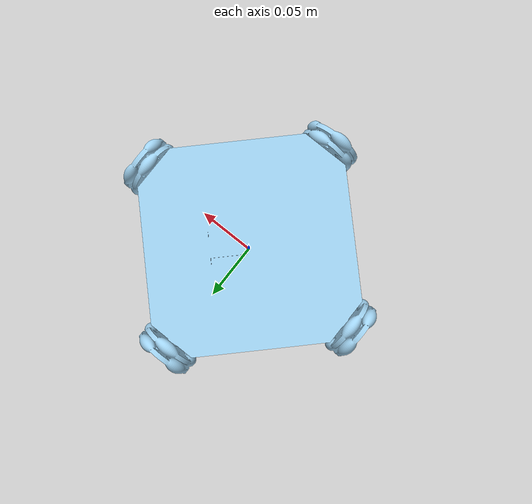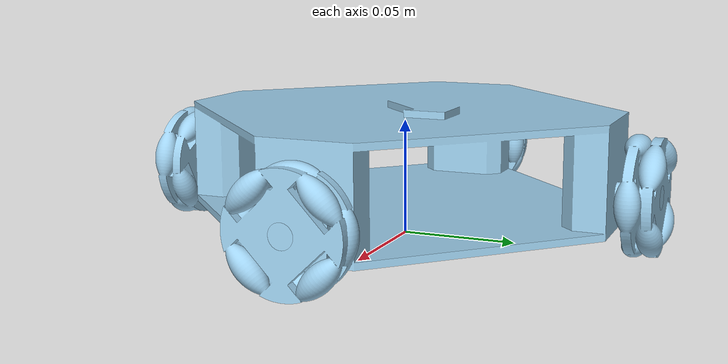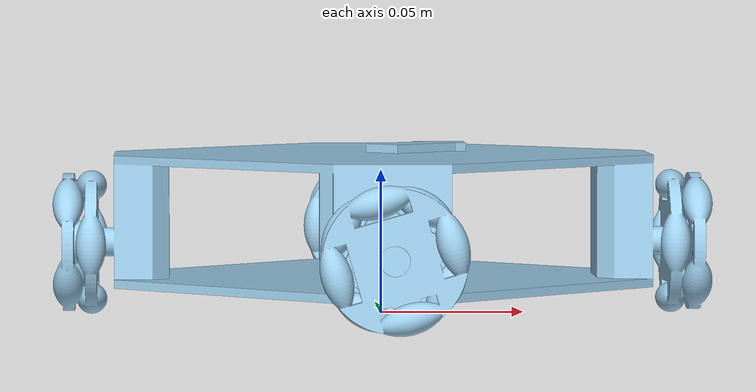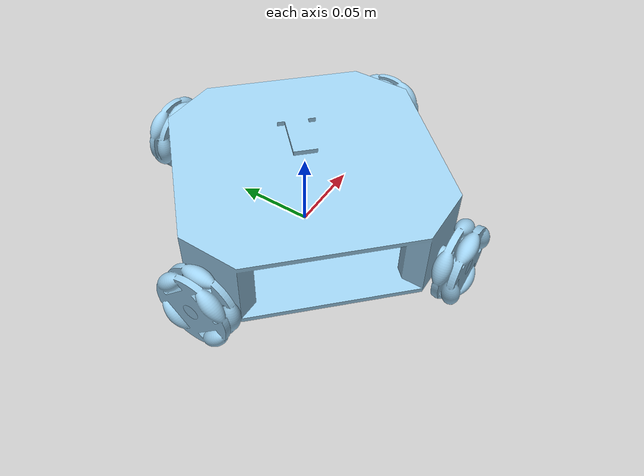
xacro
<?xml version="1.0"?>
<robot xmlns:xacro="http://www.ros.org/wiki/xacro" name="bonbanhomni">
    <xacro:include filename="macros.xacro"/>

    <xacro:link link_name="chassis"
                x1="0.000385741" y1="-0.000525851" z1="0.0330364" roll1="0" pitch1="0" yaw1="0"
                mass="0.332505"
                ixx="0.00101221" ixy="-5.71129e-07" ixz="-7.85419e-07" iyy="0.00101221" iyz="-7.85419e-07" izz="0.00181553"
                r="0.615686" g="0.811765" b="0.929412" a="1"
                x2="0.000289337" y2="-0.000622255" z2="0.0100389" roll2="-3.57353e-16" pitch2="2.97332e-15" yaw2="0.785398"/>

    <xacro:link link_name="omni_wheel_1"
                x1="8.57539e-19" y1="-1.25703e-18" z1="-0.006" roll1="0" pitch1="0" yaw1="0"
                mass="0.0187413"
                ixx="3.45051e-06" ixy="2.12654e-37" ixz="-1.45049e-37" iyy="3.45051e-06" iyz="1.45388e-37" izz="6.18323e-06"
                r="0.615686" g="0.811765" b="0.929412" a="1"
                x2="0" y2="0" z2="-0.012" roll2="-1.5708" pitch2="-2.46991e-32" yaw2="1.54074e-33"/>

    <xacro:joint joint_name="omni_wheel_1_joint" type="continuous"
                 x1="-0.111248" y1="-0.000622255" z1="0.0250389" roll1="1.5708" pitch1="-7.63278e-17" yaw1="-1.5708"
                 parent_link="chassis"
                 child_link="omni_wheel_1"
                 x2="0" y2="0" z2="1" effort="10" velocity="10"/>

    <xacro:link link_name="omni_wheel_2"
                x1="8.57539e-19" y1="-1.25703e-18" z1="-0.006" roll1="0" pitch1="0" yaw1="0"
                mass="0.0187413"
                ixx="3.45051e-06" ixy="2.12654e-38" ixz="-7.74105e-39" iyy="3.45051e-06" iyz="-8.84188e-38" izz="6.18323e-06"
                r="0.615686" g="0.811765" b="0.929412" a="1"
                x2="0" y2="0" z2="-0.012" roll2="-1.5708" pitch2="5.9335e-34" yaw2="2.24267e-33"/>

    <xacro:joint joint_name="omni_wheel_2_joint" type="continuous"
                 x1="0.000289337" y1="0.110915" z1="0.0250389" roll1="-1.5708" pitch1="-3.78557e-17" yaw1="-7.67631e-18"
                 parent_link="chassis"
                 child_link="omni_wheel_2"
                 x2="0" y2="0" z2="1" effort="10" velocity="10"/>

    <xacro:link link_name="omni_wheel_3"
                x1="4.32699e-18" y1="1.25703e-18" z1="-0.006" roll1="0" pitch1="0" yaw1="0"
                mass="0.0187413"
                ixx="3.45051e-06" ixy="-1.39921e-23" ixz="-1.02865e-37" iyy="3.45051e-06" iyz="2.29633e-37" izz="6.18323e-06"
                r="0.615686" g="0.811765" b="0.929412" a="1"
                x2="3.46945e-18" y2="0" z2="0" roll2="1.5708" pitch2="1.97339e-33" yaw2="-1.78537e-17"/>

    <xacro:joint joint_name="omni_wheel_3_joint" type="continuous"
                 x1="0.111826" y1="-0.000622255" z1="0.0250389" roll1="-1.5708" pitch1="-0.80872" yaw1="-1.5708"
                 parent_link="chassis"
                 child_link="omni_wheel_3"
                 x2="0" y2="0" z2="1" effort="10" velocity="10"/>

    <xacro:link link_name="omni_wheel_4"
                x1="-2.61191e-18" y1="1.25703e-18" z1="-0.006" roll1="0" pitch1="0" yaw1="0"
                mass="0.0187413"
                ixx="3.45051e-06" ixy="-2.75896e-22" ixz="-5.2204e-37" iyy="3.45051e-06" iyz="1.1741e-38" izz="6.18323e-06"
                r="0.615686" g="0.811765" b="0.929412" a="1"
                x2="-3.46945e-18" y2="0" z2="0" roll2="1.5708" pitch2="-1.1376e-31" yaw2="-6.11168e-17"/>

    <xacro:joint joint_name="omni_wheel_4_joint" type="continuous"
                 x1="0.000289337" y1="-0.112159" z1="0.0250389" roll1="1.5708" pitch1="1.29425" yaw1="-1.09788e-14"
                 parent_link="chassis"
                 child_link="omni_wheel_4"
                 x2="0" y2="0" z2="1" effort="10" velocity="10"/>
</robot>

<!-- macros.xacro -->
<robot xmlns:xacro="http://www.ros.org/wiki/xacro" name="macros">
    <xacro:macro name="link" params="link_name
                                     x1 y1 z1 roll1 pitch1 yaw1
                                     mass
                                     ixx ixy ixz iyy iyz izz
                                     r g b a
                                     x2 y2 z2 roll2 pitch2 yaw2">
        <link name="${link_name}">
            <inertial>
                <origin xyz="${x1} ${y1} ${z1}" rpy="${roll1} ${pitch1} ${yaw1}"/>
                <mass value="${mass}"/>
                <inertia ixx="${ixx}" ixy="${ixy}" ixz="${ixz}" iyy="${iyy}" iyz="${iyz}" izz="${izz}"/>
            </inertial>
            <visual>
                <origin xyz="${x2} ${y2} ${z2}" rpy="${roll2} ${pitch2} ${yaw2}"/>
                <geometry>
                    <mesh filename="package://xe_tang/meshes/${link_name}.stl"/>
                </geometry>
                <material name="${link_name}_material">
                    <color rgba="${r} ${g} ${b} ${a}"/>
                </material>
            </visual>
            <collision>
                <origin xyz="${x2} ${y2} ${z2}" rpy="${roll2} ${pitch2} ${yaw2}"/>
                <geometry>
                    <mesh filename="package://xe_tang/meshes/${link_name}.stl"/>
                </geometry>
            </collision>
        </link>
    </xacro:macro>

    <xacro:macro name="joint" params="joint_name type
                                      x1 y1 z1 roll1 pitch1 yaw1
                                      parent_link
                                      child_link
                                      x2:=0 y2:=0 z2:=0
                                      effort:=0 velocity:=0 lower:=0 upper:=0">
        <joint name="${joint_name}" type="${type}">
            <origin xyz="${x1} ${y1} ${z1}" rpy="${roll1} ${pitch1} ${yaw1}"/>
            <parent link="${parent_link}"/>
            <child link="${child_link}"/>
            <xacro:if value="${type == 'revolute' or type == 'prismatic'}">
                <axis xyz="${x2} ${y2} ${z2}"/>
                <limit effort="${effort}" velocity="${velocity}" lower="${lower}" upper="${upper}"/>
            </xacro:if>
            <xacro:if value="${type == 'continuous'}">
                <axis xyz="${x2} ${y2} ${z2}"/>
                <limit effort="${effort}" velocity="${velocity}"/>
            </xacro:if>
        </joint>
    </xacro:macro>
</robot>
